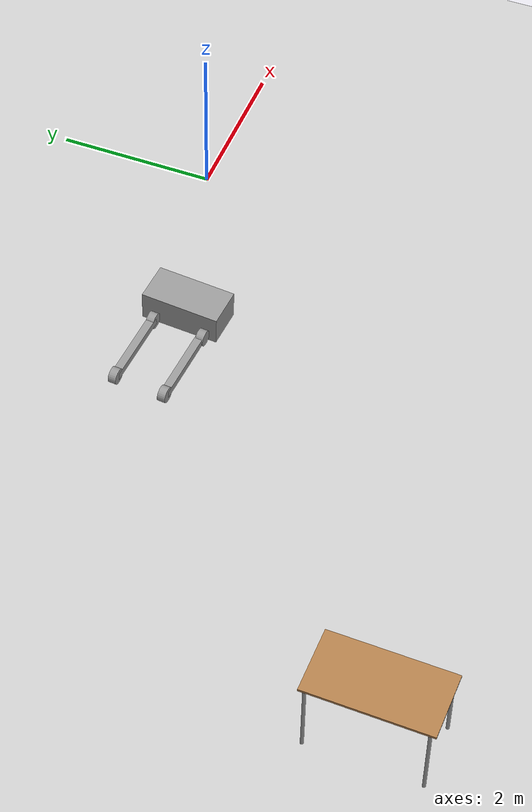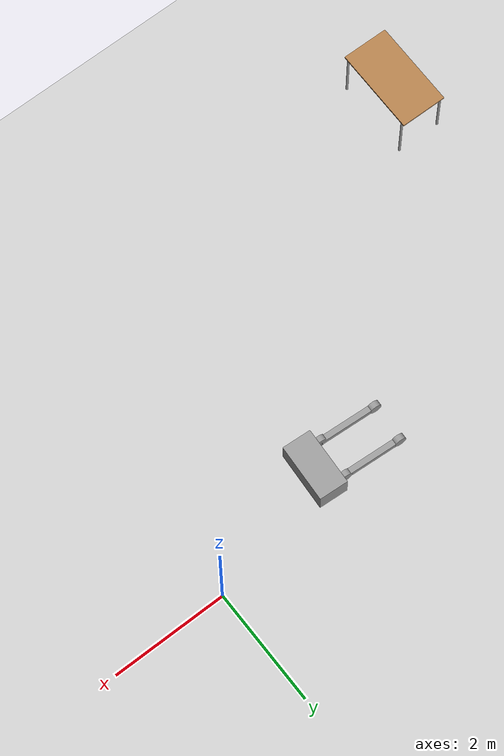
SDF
<sdf version="1.6">
 <world name="default">
  <model name="ground_plane">
   <static>1</static>
   <link name="link">
    <collision name="collision">
     <geometry><plane><normal>0 0 1</normal><size>100 100</size></plane></geometry>
     <surface><friction><ode><mu>100</mu><mu2>50</mu2></ode></friction></surface>
    </collision>
    <visual name="visual">
     <cast_shadows>0</cast_shadows>
     <geometry><plane><normal>0 0 1</normal><size>100 100</size></plane></geometry>
     <material>
      <script><uri>file://media/materials/scripts/gazebo.material</uri><name>Gazebo/Grey</name></script>
     </material>
    </visual>
   </link>
  </model>
  <model name="HumanoidRobot_0">
   <link name="link_0">
    <pose>-0.000184 -0.328288 -0.269516 0 -0 0</pose>
    <inertial>
     <mass>1</mass>
     <inertia>
      <ixx>0.166667</ixx>
      <ixy>0</ixy>
      <ixz>0</ixz>
      <iyy>0.166667</iyy>
      <iyz>0</iyz>
      <izz>0.166667</izz>
     </inertia>
    </inertial>
    <visual name="visual">
     <geometry><box><size>0.1 0.1 1</size></box></geometry>
     <material>
      <lighting>1</lighting>
      <script><uri>file://media/materials/scripts/gazebo.material</uri><name>Gazebo/Grey</name></script>
      <shader type="pixel"><normal_map>__default__</normal_map></shader>
      <ambient>0.3 0.3 0.3 1</ambient>
      <diffuse>0.7 0.7 0.7 1</diffuse>
      <specular>0.01 0.01 0.01 1</specular>
      <emissive>0 0 0 1</emissive>
     </material>
    </visual>
    <collision name="collision">
     <geometry><box><size>0.1 0.1 1</size></box></geometry>
     <surface>
      <friction>
       <ode><mu>1</mu><mu2>1</mu2><fdir1>0 0 0</fdir1><slip1>0</slip1><slip2>0</slip2></ode>
       <torsional>
        <coefficient>1</coefficient>
        <patch_radius>0</patch_radius>
        <surface_radius>0</surface_radius>
        <use_patch_radius>1</use_patch_radius>
        <ode><slip>0</slip></ode>
       </torsional>
      </friction>
      <bounce><restitution_coefficient>0</restitution_coefficient><threshold>1e+06</threshold></bounce>
      <contact>
       <collide_without_contact>0</collide_without_contact>
       <collide_without_contact_bitmask>1</collide_without_contact_bitmask>
       <collide_bitmask>1</collide_bitmask>
       <ode>
        <soft_cfm>0</soft_cfm>
        <soft_erp>0.2</soft_erp>
        <kp>1e+13</kp>
        <kd>1</kd>
        <max_vel>0.01</max_vel>
        <min_depth>0</min_depth>
       </ode>
       <bullet>
        <split_impulse>1</split_impulse>
        <split_impulse_penetration_threshold>-0.01</split_impulse_penetration_threshold>
        <soft_cfm>0</soft_cfm>
        <soft_erp>0.2</soft_erp>
        <kp>1e+13</kp>
        <kd>1</kd>
       </bullet>
      </contact>
     </surface>
    </collision>
   </link>
   <link name="link_0_clone">
    <pose>0.006018 0.32712 -0.269515 0 -0 0</pose>
    <inertial>
     <mass>1</mass>
     <inertia>
      <ixx>0.166667</ixx>
      <ixy>0</ixy>
      <ixz>0</ixz>
      <iyy>0.166667</iyy>
      <iyz>0</iyz>
      <izz>0.166667</izz>
     </inertia>
    </inertial>
    <visual name="visual">
     <geometry><box><size>0.1 0.1 1</size></box></geometry>
     <material>
      <lighting>1</lighting>
      <script><uri>file://media/materials/scripts/gazebo.material</uri><name>Gazebo/Grey</name></script>
      <shader type="pixel"><normal_map>__default__</normal_map></shader>
      <ambient>0.3 0.3 0.3 1</ambient>
      <diffuse>0.7 0.7 0.7 1</diffuse>
      <specular>0.01 0.01 0.01 1</specular>
      <emissive>0 0 0 1</emissive>
     </material>
    </visual>
    <collision name="collision">
     <geometry><box><size>0.1 0.1 1</size></box></geometry>
     <surface>
      <friction>
       <ode><mu>1</mu><mu2>1</mu2><fdir1>0 0 0</fdir1><slip1>0</slip1><slip2>0</slip2></ode>
       <torsional>
        <coefficient>1</coefficient>
        <patch_radius>0</patch_radius>
        <surface_radius>0</surface_radius>
        <use_patch_radius>1</use_patch_radius>
        <ode><slip>0</slip></ode>
       </torsional>
      </friction>
      <bounce><restitution_coefficient>0</restitution_coefficient><threshold>1e+06</threshold></bounce>
      <contact>
       <collide_without_contact>0</collide_without_contact>
       <collide_without_contact_bitmask>1</collide_without_contact_bitmask>
       <collide_bitmask>1</collide_bitmask>
       <ode>
        <soft_cfm>0</soft_cfm>
        <soft_erp>0.2</soft_erp>
        <kp>1e+13</kp>
        <kd>1</kd>
        <max_vel>0.01</max_vel>
        <min_depth>0</min_depth>
       </ode>
       <bullet>
        <split_impulse>1</split_impulse>
        <split_impulse_penetration_threshold>-0.01</split_impulse_penetration_threshold>
        <soft_cfm>0</soft_cfm>
        <soft_erp>0.2</soft_erp>
        <kp>1e+13</kp>
        <kd>1</kd>
       </bullet>
      </contact>
     </surface>
    </collision>
   </link>
   <link name="link_1">
    <pose>-0.000184 -0.326897 -0.769516 1.57 -0 0</pose>
    <inertial>
     <mass>1</mass>
     <inertia><ixx>0.145833</ixx><ixy>0</ixy><ixz>0</ixz><iyy>0.145833</iyy><iyz>0</iyz><izz>0.125</izz></inertia>
    </inertial>
    <visual name="visual">
     <geometry><cylinder><radius>0.1</radius><length>0.1</length></cylinder></geometry>
     <material>
      <lighting>1</lighting>
      <script><uri>file://media/materials/scripts/gazebo.material</uri><name>Gazebo/Grey</name></script>
      <shader type="pixel"><normal_map>__default__</normal_map></shader>
      <ambient>0.3 0.3 0.3 1</ambient>
      <diffuse>0.7 0.7 0.7 1</diffuse>
      <specular>0.01 0.01 0.01 1</specular>
      <emissive>0 0 0 1</emissive>
     </material>
    </visual>
    <collision name="collision">
     <geometry><cylinder><radius>0.1</radius><length>0.1</length></cylinder></geometry>
     <surface>
      <friction>
       <ode><mu>1</mu><mu2>1</mu2><fdir1>0 0 0</fdir1><slip1>0</slip1><slip2>0</slip2></ode>
       <torsional>
        <coefficient>1</coefficient>
        <patch_radius>0</patch_radius>
        <surface_radius>0</surface_radius>
        <use_patch_radius>1</use_patch_radius>
        <ode><slip>0</slip></ode>
       </torsional>
      </friction>
      <bounce><restitution_coefficient>0</restitution_coefficient><threshold>1e+06</threshold></bounce>
      <contact>
       <collide_without_contact>0</collide_without_contact>
       <collide_without_contact_bitmask>1</collide_without_contact_bitmask>
       <collide_bitmask>1</collide_bitmask>
       <ode>
        <soft_cfm>0</soft_cfm>
        <soft_erp>0.2</soft_erp>
        <kp>1e+13</kp>
        <kd>1</kd>
        <max_vel>0.01</max_vel>
        <min_depth>0</min_depth>
       </ode>
       <bullet>
        <split_impulse>1</split_impulse>
        <split_impulse_penetration_threshold>-0.01</split_impulse_penetration_threshold>
        <soft_cfm>0</soft_cfm>
        <soft_erp>0.2</soft_erp>
        <kp>1e+13</kp>
        <kd>1</kd>
       </bullet>
      </contact>
     </surface>
    </collision>
   </link>
   <link name="link_1_clone">
    <pose>-0.000184 0.327164 -0.769516 1.57 -0 0</pose>
    <inertial>
     <mass>1</mass>
     <inertia><ixx>0.145833</ixx><ixy>0</ixy><ixz>0</ixz><iyy>0.145833</iyy><iyz>0</iyz><izz>0.125</izz></inertia>
    </inertial>
    <visual name="visual">
     <geometry><cylinder><radius>0.1</radius><length>0.1</length></cylinder></geometry>
     <material>
      <lighting>1</lighting>
      <script><uri>file://media/materials/scripts/gazebo.material</uri><name>Gazebo/Grey</name></script>
      <shader type="pixel"><normal_map>__default__</normal_map></shader>
      <ambient>0.3 0.3 0.3 1</ambient>
      <diffuse>0.7 0.7 0.7 1</diffuse>
      <specular>0.01 0.01 0.01 1</specular>
      <emissive>0 0 0 1</emissive>
     </material>
    </visual>
    <collision name="collision">
     <geometry><cylinder><radius>0.1</radius><length>0.1</length></cylinder></geometry>
     <surface>
      <friction>
       <ode><mu>1</mu><mu2>1</mu2><fdir1>0 0 0</fdir1><slip1>0</slip1><slip2>0</slip2></ode>
       <torsional>
        <coefficient>1</coefficient>
        <patch_radius>0</patch_radius>
        <surface_radius>0</surface_radius>
        <use_patch_radius>1</use_patch_radius>
        <ode><slip>0</slip></ode>
       </torsional>
      </friction>
      <bounce><restitution_coefficient>0</restitution_coefficient><threshold>1e+06</threshold></bounce>
      <contact>
       <collide_without_contact>0</collide_without_contact>
       <collide_without_contact_bitmask>1</collide_without_contact_bitmask>
       <collide_bitmask>1</collide_bitmask>
       <ode>
        <soft_cfm>0</soft_cfm>
        <soft_erp>0.2</soft_erp>
        <kp>1e+13</kp>
        <kd>1</kd>
        <max_vel>0.01</max_vel>
        <min_depth>0</min_depth>
       </ode>
       <bullet>
        <split_impulse>1</split_impulse>
        <split_impulse_penetration_threshold>-0.01</split_impulse_penetration_threshold>
        <soft_cfm>0</soft_cfm>
        <soft_erp>0.2</soft_erp>
        <kp>1e+13</kp>
        <kd>1</kd>
       </bullet>
      </contact>
     </surface>
    </collision>
   </link>
   <link name="link_1_clone_0">
    <pose>0.001082 -0.339906 0.231714 1.57 -0 0</pose>
    <inertial>
     <mass>1</mass>
     <inertia><ixx>0.145833</ixx><ixy>0</ixy><ixz>0</ixz><iyy>0.145833</iyy><iyz>0</iyz><izz>0.125</izz></inertia>
    </inertial>
    <visual name="visual">
     <geometry><cylinder><radius>0.1</radius><length>0.1</length></cylinder></geometry>
     <material>
      <lighting>1</lighting>
      <script><uri>file://media/materials/scripts/gazebo.material</uri><name>Gazebo/Grey</name></script>
      <shader type="pixel"><normal_map>__default__</normal_map></shader>
      <ambient>0.3 0.3 0.3 1</ambient>
      <diffuse>0.7 0.7 0.7 1</diffuse>
      <specular>0.01 0.01 0.01 1</specular>
      <emissive>0 0 0 1</emissive>
     </material>
    </visual>
    <collision name="collision">
     <geometry><cylinder><radius>0.1</radius><length>0.1</length></cylinder></geometry>
     <surface>
      <friction>
       <ode><mu>1</mu><mu2>1</mu2><fdir1>0 0 0</fdir1><slip1>0</slip1><slip2>0</slip2></ode>
       <torsional>
        <coefficient>1</coefficient>
        <patch_radius>0</patch_radius>
        <surface_radius>0</surface_radius>
        <use_patch_radius>1</use_patch_radius>
        <ode><slip>0</slip></ode>
       </torsional>
      </friction>
      <bounce><restitution_coefficient>0</restitution_coefficient><threshold>1e+06</threshold></bounce>
      <contact>
       <collide_without_contact>0</collide_without_contact>
       <collide_without_contact_bitmask>1</collide_without_contact_bitmask>
       <collide_bitmask>1</collide_bitmask>
       <ode>
        <soft_cfm>0</soft_cfm>
        <soft_erp>0.2</soft_erp>
        <kp>1e+13</kp>
        <kd>1</kd>
        <max_vel>0.01</max_vel>
        <min_depth>0</min_depth>
       </ode>
       <bullet>
        <split_impulse>1</split_impulse>
        <split_impulse_penetration_threshold>-0.01</split_impulse_penetration_threshold>
        <soft_cfm>0</soft_cfm>
        <soft_erp>0.2</soft_erp>
        <kp>1e+13</kp>
        <kd>1</kd>
       </bullet>
      </contact>
     </surface>
    </collision>
   </link>
   <link name="link_1_clone_0_clone">
    <pose>0.015284 0.327243 0.230484 1.57 -0 0</pose>
    <inertial>
     <mass>1</mass>
     <inertia><ixx>0.145833</ixx><ixy>0</ixy><ixz>0</ixz><iyy>0.145833</iyy><iyz>0</iyz><izz>0.125</izz></inertia>
    </inertial>
    <visual name="visual">
     <geometry><cylinder><radius>0.1</radius><length>0.1</length></cylinder></geometry>
     <material>
      <lighting>1</lighting>
      <script><uri>file://media/materials/scripts/gazebo.material</uri><name>Gazebo/Grey</name></script>
      <shader type="pixel"><normal_map>__default__</normal_map></shader>
      <ambient>0.3 0.3 0.3 1</ambient>
      <diffuse>0.7 0.7 0.7 1</diffuse>
      <specular>0.01 0.01 0.01 1</specular>
      <emissive>0 0 0 1</emissive>
     </material>
    </visual>
    <collision name="collision">
     <geometry><cylinder><radius>0.1</radius><length>0.1</length></cylinder></geometry>
     <surface>
      <friction>
       <ode><mu>1</mu><mu2>1</mu2><fdir1>0 0 0</fdir1><slip1>0</slip1><slip2>0</slip2></ode>
       <torsional>
        <coefficient>1</coefficient>
        <patch_radius>0</patch_radius>
        <surface_radius>0</surface_radius>
        <use_patch_radius>1</use_patch_radius>
        <ode><slip>0</slip></ode>
       </torsional>
      </friction>
      <bounce><restitution_coefficient>0</restitution_coefficient><threshold>1e+06</threshold></bounce>
      <contact>
       <collide_without_contact>0</collide_without_contact>
       <collide_without_contact_bitmask>1</collide_without_contact_bitmask>
       <collide_bitmask>1</collide_bitmask>
       <ode>
        <soft_cfm>0</soft_cfm>
        <soft_erp>0.2</soft_erp>
        <kp>1e+13</kp>
        <kd>1</kd>
        <max_vel>0.01</max_vel>
        <min_depth>0</min_depth>
       </ode>
       <bullet>
        <split_impulse>1</split_impulse>
        <split_impulse_penetration_threshold>-0.01</split_impulse_penetration_threshold>
        <soft_cfm>0</soft_cfm>
        <soft_erp>0.2</soft_erp>
        <kp>1e+13</kp>
        <kd>1</kd>
       </bullet>
      </contact>
     </surface>
    </collision>
   </link>
   <link name="link_3">
    <pose>-0.021834 0.013565 0.565864 0 -0 0</pose>
    <inertial>
     <mass>1</mass>
     <inertia>
      <ixx>0.166667</ixx>
      <ixy>0</ixy>
      <ixz>0</ixz>
      <iyy>0.166667</iyy>
      <iyz>0</iyz>
      <izz>0.166667</izz>
     </inertia>
    </inertial>
    <visual name="visual">
     <geometry><box><size>0.5 1 0.5</size></box></geometry>
     <material>
      <lighting>1</lighting>
      <script><uri>file://media/materials/scripts/gazebo.material</uri><name>Gazebo/Grey</name></script>
      <shader type="pixel"><normal_map>__default__</normal_map></shader>
      <ambient>0.3 0.3 0.3 1</ambient>
      <diffuse>0.7 0.7 0.7 1</diffuse>
      <specular>0.01 0.01 0.01 1</specular>
      <emissive>0 0 0 1</emissive>
     </material>
    </visual>
    <collision name="collision">
     <geometry><box><size>0.5 1 0.5</size></box></geometry>
     <surface>
      <friction>
       <ode><mu>1</mu><mu2>1</mu2><fdir1>0 0 0</fdir1><slip1>0</slip1><slip2>0</slip2></ode>
       <torsional>
        <coefficient>1</coefficient>
        <patch_radius>0</patch_radius>
        <surface_radius>0</surface_radius>
        <use_patch_radius>1</use_patch_radius>
        <ode><slip>0</slip></ode>
       </torsional>
      </friction>
      <bounce><restitution_coefficient>0</restitution_coefficient><threshold>1e+06</threshold></bounce>
      <contact>
       <collide_without_contact>0</collide_without_contact>
       <collide_without_contact_bitmask>1</collide_without_contact_bitmask>
       <collide_bitmask>1</collide_bitmask>
       <ode>
        <soft_cfm>0</soft_cfm>
        <soft_erp>0.2</soft_erp>
        <kp>1e+13</kp>
        <kd>1</kd>
        <max_vel>0.01</max_vel>
        <min_depth>0</min_depth>
       </ode>
       <bullet>
        <split_impulse>1</split_impulse>
        <split_impulse_penetration_threshold>-0.01</split_impulse_penetration_threshold>
        <soft_cfm>0</soft_cfm>
        <soft_erp>0.2</soft_erp>
        <kp>1e+13</kp>
        <kd>1</kd>
       </bullet>
      </contact>
     </surface>
    </collision>
   </link>
   <joint name="link_0_JOINT_0" type="revolute">
    <parent>link_0</parent>
    <child>link_1</child>
    <axis>
     <xyz>0 0 1</xyz>
     <use_parent_model_frame>0</use_parent_model_frame>
     <limit>
      <lower>-1.79769e+308</lower>
      <upper>1.79769e+308</upper>
      <effort>-1</effort>
      <velocity>-1</velocity>
     </limit>
     <dynamics>
      <spring_reference>0</spring_reference>
      <spring_stiffness>0</spring_stiffness>
      <damping>0</damping>
      <friction>0</friction>
     </dynamics>
    </axis>
    <physics>
     <ode><limit><cfm>0</cfm><erp>0.2</erp></limit><suspension><cfm>0</cfm><erp>0.2</erp></suspension></ode>
    </physics>
   </joint>
   <joint name="link_0_clone_JOINT_1" type="revolute">
    <parent>link_0_clone</parent>
    <child>link_1_clone</child>
    <axis>
     <xyz>0 0 1</xyz>
     <use_parent_model_frame>0</use_parent_model_frame>
     <limit>
      <lower>-1.79769e+308</lower>
      <upper>1.79769e+308</upper>
      <effort>-1</effort>
      <velocity>-1</velocity>
     </limit>
     <dynamics>
      <spring_reference>0</spring_reference>
      <spring_stiffness>0</spring_stiffness>
      <damping>0</damping>
      <friction>0</friction>
     </dynamics>
    </axis>
    <physics>
     <ode><limit><cfm>0</cfm><erp>0.2</erp></limit><suspension><cfm>0</cfm><erp>0.2</erp></suspension></ode>
    </physics>
   </joint>
   <joint name="link_1_clone_0_JOINT_6" type="fixed">
    <parent>link_1_clone_0</parent>
    <child>link_0</child>
    <physics>
     <ode><limit><cfm>0</cfm><erp>0.2</erp></limit><suspension><cfm>0</cfm><erp>0.2</erp></suspension></ode>
    </physics>
   </joint>
   <joint name="link_1_clone_0_clone_JOINT_7" type="fixed">
    <parent>link_1_clone_0_clone</parent>
    <child>link_0_clone</child>
    <physics>
     <ode><limit><cfm>0</cfm><erp>0.2</erp></limit><suspension><cfm>0</cfm><erp>0.2</erp></suspension></ode>
    </physics>
   </joint>
   <joint name="link_3_JOINT_8" type="revolute">
    <parent>link_3</parent>
    <child>link_1_clone_0</child>
    <axis>
     <xyz>0 0 1</xyz>
     <use_parent_model_frame>0</use_parent_model_frame>
     <limit>
      <lower>-1.79769e+308</lower>
      <upper>1.79769e+308</upper>
      <effort>-1</effort>
      <velocity>-1</velocity>
     </limit>
     <dynamics>
      <spring_reference>0</spring_reference>
      <spring_stiffness>0</spring_stiffness>
      <damping>0</damping>
      <friction>0</friction>
     </dynamics>
    </axis>
    <physics>
     <ode><limit><cfm>0</cfm><erp>0.2</erp></limit><suspension><cfm>0</cfm><erp>0.2</erp></suspension></ode>
    </physics>
   </joint>
   <joint name="link_3_JOINT_9" type="revolute">
    <parent>link_3</parent>
    <child>link_1_clone_0_clone</child>
    <axis>
     <xyz>0 0 1</xyz>
     <use_parent_model_frame>0</use_parent_model_frame>
     <limit>
      <lower>-1.79769e+308</lower>
      <upper>1.79769e+308</upper>
      <effort>-1</effort>
      <velocity>-1</velocity>
     </limit>
     <dynamics>
      <spring_reference>0</spring_reference>
      <spring_stiffness>0</spring_stiffness>
      <damping>0</damping>
      <friction>0</friction>
     </dynamics>
    </axis>
    <physics>
     <ode><limit><cfm>0</cfm><erp>0.2</erp></limit><suspension><cfm>0</cfm><erp>0.2</erp></suspension></ode>
    </physics>
   </joint>
   <static>0</static>
   <pose>-2.84731 -0.659722 0.106817 1.47654 1.55511 1.41519</pose>
  </model>
  <model name="table">
   <static>1</static>
   <link name="link">
    <collision name="surface">
     <pose>0 0 1 0 -0 0</pose>
     <geometry><box><size>1.5 0.8 0.03</size></box></geometry>
     <surface><friction><ode><mu>0.6</mu><mu2>0.6</mu2></ode></friction></surface>
    </collision>
    <visual name="visual1">
     <pose>0 0 1 0 -0 0</pose>
     <geometry><box><size>1.5 0.8 0.03</size></box></geometry>
     <material>
      <script><uri>file://media/materials/scripts/gazebo.material</uri><name>Gazebo/Wood</name></script>
     </material>
    </visual>
    <collision name="front_left_leg">
     <pose>0.68 0.38 0.5 0 -0 0</pose>
     <geometry><cylinder><radius>0.02</radius><length>1</length></cylinder></geometry>
    </collision>
    <visual name="front_left_leg">
     <pose>0.68 0.38 0.5 0 -0 0</pose>
     <geometry><cylinder><radius>0.02</radius><length>1</length></cylinder></geometry>
     <material>
      <script><uri>file://media/materials/scripts/gazebo.material</uri><name>Gazebo/Grey</name></script>
     </material>
    </visual>
    <collision name="front_right_leg">
     <pose>0.68 -0.38 0.5 0 -0 0</pose>
     <geometry><cylinder><radius>0.02</radius><length>1</length></cylinder></geometry>
    </collision>
    <visual name="front_right_leg">
     <pose>0.68 -0.38 0.5 0 -0 0</pose>
     <geometry><cylinder><radius>0.02</radius><length>1</length></cylinder></geometry>
     <material>
      <script><uri>file://media/materials/scripts/gazebo.material</uri><name>Gazebo/Grey</name></script>
     </material>
    </visual>
    <collision name="back_right_leg">
     <pose>-0.68 -0.38 0.5 0 -0 0</pose>
     <geometry><cylinder><radius>0.02</radius><length>1</length></cylinder></geometry>
    </collision>
    <visual name="back_right_leg">
     <pose>-0.68 -0.38 0.5 0 -0 0</pose>
     <geometry><cylinder><radius>0.02</radius><length>1</length></cylinder></geometry>
     <material>
      <script><uri>file://media/materials/scripts/gazebo.material</uri><name>Gazebo/Grey</name></script>
     </material>
    </visual>
    <collision name="back_left_leg">
     <pose>-0.68 0.38 0.5 0 -0 0</pose>
     <geometry><cylinder><radius>0.02</radius><length>1</length></cylinder></geometry>
    </collision>
    <visual name="back_left_leg">
     <pose>-0.68 0.38 0.5 0 -0 0</pose>
     <geometry><cylinder><radius>0.02</radius><length>1</length></cylinder></geometry>
     <material>
      <script><uri>file://media/materials/scripts/gazebo.material</uri><name>Gazebo/Grey</name></script>
     </material>
    </visual>
   </link>
   <pose>-7.07914 -4.80151 0 0 0 -1.5811</pose>
  </model>
 </world>
</sdf>
